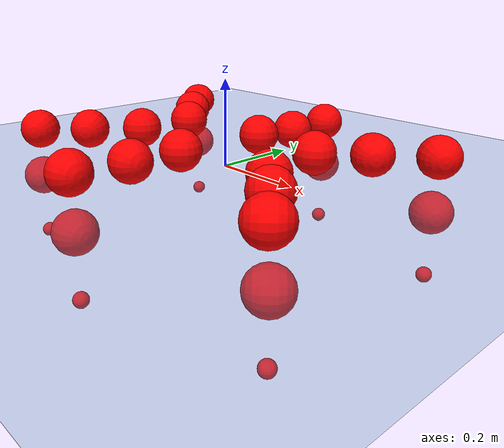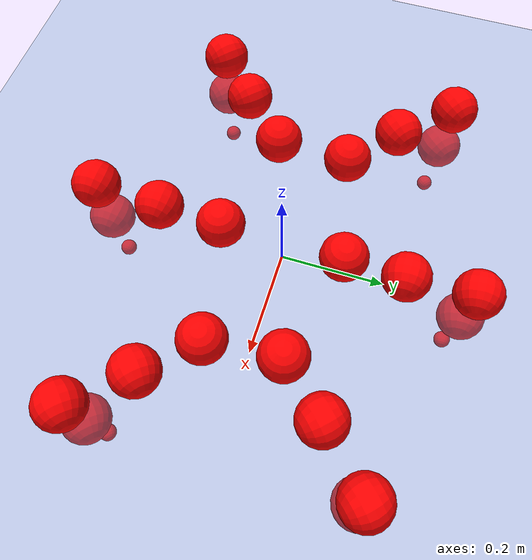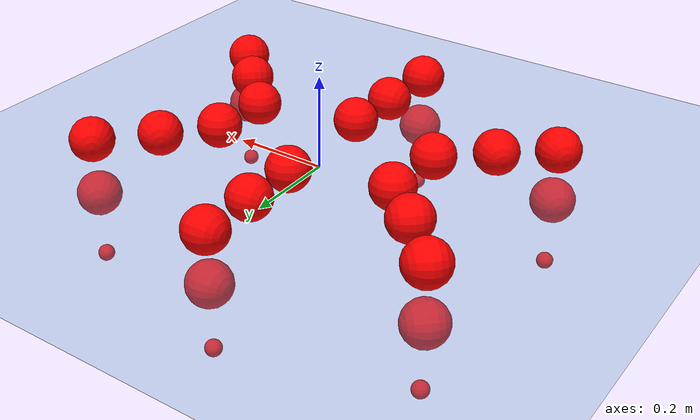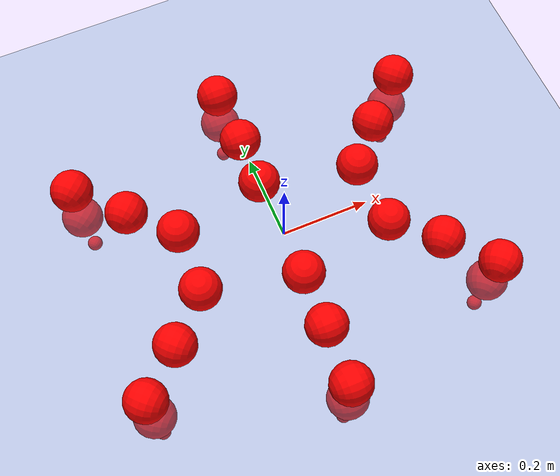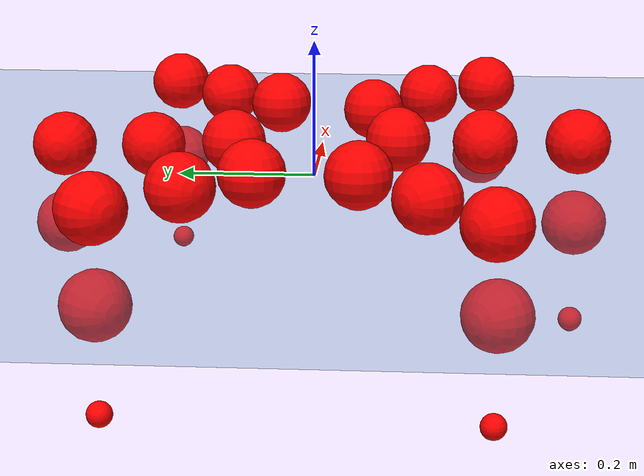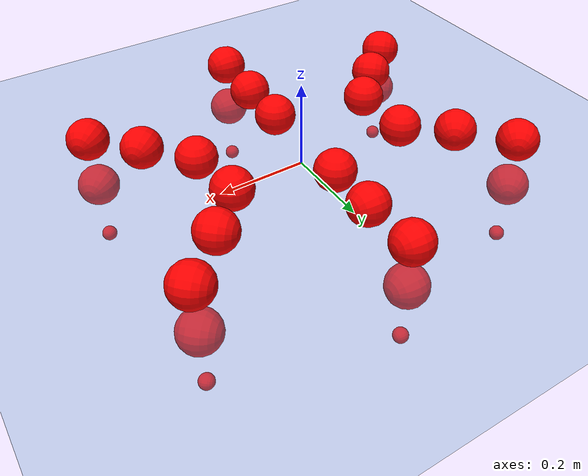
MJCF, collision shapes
<mujoco model="Golem">
  <compiler angle="radian" assetdir="assets" balanceinertia="true" inertiafromgeom="false"/>

  <option timestep="0.005" density="1.2" viscosity="2e-05"/>

  <size nkey="1"/>

  <visual>
    <quality shadowsize="8192"/>
    <map shadowclip="0.5"/>
  </visual>

  <default>
    <default class="/">
      <joint armature="0.01" damping="0.01" frictionloss="0.01"/>
      <geom contype="0" conaffinity="0" group="1" solref="-1000 -80"/>
      <site size="0.01 0.005 0.005" group="5"/>
      <general forcelimited="true" biastype="affine" gainprm="25" biasprm="0 -25 -0.5"/>
      <default class="visual">
        <geom type="mesh" group="2"/>
      </default>
      <default class="collision">
        <geom group="3"/>
      </default>
      <default class="foot">
        <geom size="0.01 0 0" condim="6" group="4" priority="1" solimp="0.015 1 0.01"/>
      </default>
      <default class="reward_collision_sphere">
        <geom group="5" rgba="1 0 0 1"/>
      </default>
    </default>
  </default>

  <asset>
    <texture type="skybox" colorspace="auto" name="//unnamed_texture_0" builtin="gradient" rgb1="0.95 0.95 0.95" rgb2="0.95 0.95 0.95" width="100" height="600"/>
    <texture type="2d" colorspace="auto" name="texplane" builtin="checker" rgb1="0.345 0.575 0.748" rgb2="0.345 0.575 0.748" markrgb="1 1 1" width="512" height="512"/>
    <material name="MatPlane" class="/" texture="texplane" texuniform="true" texrepeat="2 2" specular="0.9"/>
    <mesh name="body" class="/" file="body.stl" scale="0.001 0.001 0.001"/>
    <mesh name="coxa" class="/" file="coxa.stl" scale="0.001 0.001 0.001"/>
    <mesh name="femur" class="/" file="femur.stl" scale="0.001 0.001 0.001"/>
    <mesh name="tibia" class="/" file="tibia.stl" scale="0.001 0.001 0.001"/>
    <mesh name="tarsus" class="/" file="tarsus.stl" scale="0.001 0.001 0.001"/>
  </asset>

  <worldbody>
    <geom name="floor" class="/" size="100 100 0.125" type="plane" group="0" material="MatPlane"/>
    <light name="toplight_shadow" class="/" pos="0 0 5" dir="0.0990148 0.0990148 -0.990148" type="directional" ambient="0.04 0.04 0.04" diffuse="0.55 0.55 0.55" specular="0.12 0.12 0.12"/>
    <light name="toplight_fill" class="/" pos="0 0 5" dir="0.0990148 0.0990148 -0.990148" type="directional" castshadow="false" ambient="0.04 0.04 0.04" diffuse="0.3 0.3 0.3" specular="0.08 0.08 0.08"/>
    <body name="trunk" pos="-0.00581068 -0.00114192 -0.000577944" quat="1 -8.5433e-06 1.65816e-05 7.43385e-05">
      <inertial pos="0.00198474 0.00202305 -0.00491061" quat="0.999986 0.00425101 -0.00205166 -0.0023478" mass="6.23546" diaginertia="0.0563829 0.0295894 0.00577599"/>
      <joint name="//unnamed_joint_0" type="free"/>
      <geom name="//unnamed_geom_1" class="/" pos="0 0 0.0572307" quat="1 0 0 0" type="mesh" rgba="0.9 0.9 0.9 1" mesh="body"/>
      <site name="imu" class="/" pos="0.156241 -0.0226899 0.0977685" size="0.0117153"/>
      <camera name="track" class="/" pos="0 -2.45486 0" quat="0.707107 0.707107 0 0" mode="trackcom"/>
      <camera name="ego_camera" class="/" pos="0.181081 0 0.089423" quat="-0.5 -0.5 0.5 0.5"/>
      <body name="coxa_RR" pos="-0.245653 -0.101711 0.0631873" quat="0.382524 0.000170861 -0.000105029 -0.923946">
        <inertial pos="9.59266e-05 0.00648269 -0.00033105" quat="0.999928 0.0118957 0.00139455 0.000214831" mass="0.357284" diaginertia="0.0554075 0.0295148 0.00609769"/>
        <joint name="coxa_joint_RR" class="/" pos="0 0 0" axis="0.00108037 0.000123187 -0.999999" stiffness="0.0275725" range="-3.12308 3.12876" armature="0.0138432" damping="0.00258876" frictionloss="0.0115775"/>
        <geom name="//unnamed_geom_2" class="/" type="mesh" rgba="0.2 0.2 0.2 1" mesh="coxa"/>
        <geom name="//unnamed_geom_3" class="reward_collision_sphere" size="0.0468613" pos="-0.041788 0 0"/>
        <body name="femur_RR" pos="0.0878098 0.000646765 -0.00406393" quat="0.499985 -0.499643 0.500227 0.500144">
          <inertial pos="1.31629e-05 -0.000934956 -0.000697551" quat="0.999969 -0.00157118 -0.0030331 0.00711223" mass="0.320881" diaginertia="0.052508 0.0283934 0.00518506"/>
          <joint name="femur_joint_RR" class="/" pos="0 0 0" axis="0.00968642 -0.00318944 -0.999948" stiffness="0.0247294" range="-3.05098 3.1833" armature="0.0105661" damping="0" frictionloss="0.00944909"/>
          <geom name="//unnamed_geom_4" class="/" type="mesh" rgba="0.9 0.9 0.9 1" mesh="femur"/>
          <geom name="//unnamed_geom_5" class="reward_collision_sphere" size="0.0468613"/>
          <body name="tibia_RR" pos="0.00356523 -0.127146 -0.00658824" quat="0.00256196 0.999995 0.00158306 -0.000933779">
            <inertial pos="0.00446767 -0.00223089 -0.00112554" quat="0.999989 0.00110465 -0.00227819 -0.00387495" mass="0.313386" diaginertia="0.0517916 0.0276377 0.00591439"/>
            <joint name="tibia_joint_RR" class="/" pos="0 0 0" axis="-0.0165541 0.0138986 0.999766" range="-3.13289 3.11114" armature="0.0103601" damping="0.00786752" frictionloss="0.0118227"/>
            <geom name="//unnamed_geom_6" class="/" type="mesh" rgba="0.2 0.2 0.2 1" mesh="tibia"/>
            <geom name="//unnamed_geom_7" class="reward_collision_sphere" size="0.0468613"/>
            <body name="tarsus_RR" pos="0.119321 0.00219376 -0.00414605" quat="1 -3.42397e-05 -6.7475e-06 5.22024e-05">
              <inertial pos="0.0795199 -5.76541e-05 0.000181783" quat="0.506537 0.50117 0.492708 0.499487" mass="0.316503" diaginertia="0.0539607 0.0280717 0.00560047"/>
              <joint name="tarsus_joint_RR" class="/" pos="0 0 0" axis="0.0023196 -0.00813868 0.999964" range="-3.05223 3.10507" armature="0.0106238" damping="0.046239" frictionloss="0.0117325"/>
              <geom name="//unnamed_geom_8" class="/" type="mesh" rgba="0.9 0.9 0.9 1" mesh="tarsus"/>
              <geom name="foot_1" class="foot" size="0.0116647" pos="0.156009 0 0" quat="0 -0.707107 0 0.707107"/>
              <geom name="//unnamed_geom_10" class="reward_collision_sphere" size="0.0468613"/>
              <geom name="//unnamed_geom_11" class="reward_collision_sphere" size="0.017573" pos="0.14974 0 0"/>
              <site name="foot_1" class="foot" pos="0.156009 0 0" quat="0 -0.707107 0 0.707107" size="0.0117153"/>
            </body>
          </body>
        </body>
      </body>
      <body name="coxa_RM" pos="-0.00110895 -0.162959 0.0595455" quat="0.70709 0.000377129 0.0006372 -0.707124">
        <inertial pos="-0.00259161 -0.0001488 -0.000100217" quat="0.999999 -0.000514215 0.000112831 0.000993131" mass="0.322818" diaginertia="0.0532249 0.0302812 0.00562669"/>
        <joint name="coxa_joint_RM" class="/" pos="0 0 0" axis="0.00628195 0.00726946 -0.999954" range="-3.15927 3.18046" armature="0.0118716" damping="0.0240012" frictionloss="0.0161114"/>
        <geom name="//unnamed_geom_12" class="/" type="mesh" rgba="0.2 0.2 0.2 1" mesh="coxa"/>
        <geom name="//unnamed_geom_13" class="reward_collision_sphere" size="0.0468613" pos="-0.041788 0 0"/>
        <body name="femur_RM" pos="0.0842164 -0.0039771 -0.000321623" quat="0.501125 -0.5015 0.499074 0.498294">
          <inertial pos="0.00206754 -0.000720699 -0.000320009" quat="0.999982 0.00515794 0.00242011 0.00162347" mass="0.290404" diaginertia="0.0482496 0.0267464 0.0052421"/>
          <joint name="femur_joint_RM" class="/" pos="0 0 0" axis="0.00260508 0.00538445 -0.999982" range="-3.09832 3.1552" armature="0.0116549" damping="0" frictionloss="0.0119382"/>
          <geom name="//unnamed_geom_14" class="/" type="mesh" rgba="0.9 0.9 0.9 1" mesh="femur"/>
          <geom name="//unnamed_geom_15" class="reward_collision_sphere" size="0.0468613"/>
          <body name="tibia_RM" pos="-0.00313882 -0.133246 -0.0063234" quat="0.000210973 1 -0.000400384 0.000385073">
            <inertial pos="-0.00202761 0.00628715 0.0011259" quat="0.999722 0.0101603 -0.00627199 0.0203198" mass="0.334914" diaginertia="0.0514945 0.0252144 0.005476"/>
            <joint name="tibia_joint_RM" class="/" pos="0 0 0" axis="8.20548e-06 0.00468762 0.999989" range="-3.04481 2.99031" armature="0.0119707" damping="0.0182001" frictionloss="0.0129544"/>
            <geom name="//unnamed_geom_16" class="/" type="mesh" rgba="0.2 0.2 0.2 1" mesh="tibia"/>
            <geom name="//unnamed_geom_17" class="reward_collision_sphere" size="0.0468613"/>
            <body name="tarsus_RM" pos="0.122327 -0.00164641 -0.00169964" quat="1 4.42607e-05 0.00029683 -0.000155849">
              <inertial pos="0.0863029 0.00198562 -0.00286007" quat="0.496555 0.523782 0.497731 0.480987" mass="0.298308" diaginertia="0.0555861 0.0283779 0.0059727"/>
              <joint name="tarsus_joint_RM" class="/" pos="0 0 0" axis="-0.00354603 -0.00449801 0.999984" stiffness="0.00768361" range="-3.17113 3.10188" armature="0.012075" damping="0" frictionloss="0.0117561"/>
              <geom name="//unnamed_geom_18" class="/" type="mesh" rgba="0.9 0.9 0.9 1" mesh="tarsus"/>
              <geom name="foot_2" class="foot" size="0.0125303" pos="0.156009 0 0" quat="0 -0.707107 0 0.707107"/>
              <geom name="//unnamed_geom_20" class="reward_collision_sphere" size="0.0468613"/>
              <geom name="//unnamed_geom_21" class="reward_collision_sphere" size="0.017573" pos="0.14974 0 0"/>
              <site name="foot_2" class="foot" pos="0.156009 0 0" quat="0 -0.707107 0 0.707107" size="0.0117153"/>
            </body>
          </body>
        </body>
      </body>
      <body name="coxa_RF" pos="0.249868 -0.108045 0.0528153" quat="0.923517 0.000334517 -0.00122361 -0.383554">
        <inertial pos="-0.00139988 -0.000657972 0.001288" quat="0.999998 -0.0015443 0.000435617 0.00103671" mass="0.329944" diaginertia="0.0524125 0.0290532 0.00583906"/>
        <joint name="coxa_joint_RF" class="/" pos="0 0 0" axis="-0.000340977 -0.000168151 -1" stiffness="0.00868692" range="-3.11464 3.17868" armature="0.00938311" damping="0.0336957" frictionloss="0.0127863"/>
        <geom name="//unnamed_geom_22" class="/" type="mesh" rgba="0.2 0.2 0.2 1" mesh="coxa"/>
        <geom name="//unnamed_geom_23" class="reward_collision_sphere" size="0.0468613" pos="-0.041788 0 0"/>
        <body name="femur_RF" pos="0.0815528 0.000794517 0.00656878" quat="0.499933 -0.500477 0.499627 0.499962">
          <inertial pos="0.000673531 0.0016657 0.00158718" quat="0.999997 0.000923986 -0.000901652 -0.00208379" mass="0.319715" diaginertia="0.052441 0.0283123 0.00534427"/>
          <joint name="femur_joint_RF" class="/" pos="0 0 0" axis="-0.000749614 0.000695802 -0.999999" range="-3.017 3.16918" armature="0.0143638" damping="0.00785232" frictionloss="0.00985584"/>
          <geom name="//unnamed_geom_24" class="/" type="mesh" rgba="0.9 0.9 0.9 1" mesh="femur"/>
          <geom name="//unnamed_geom_25" class="reward_collision_sphere" size="0.0468613"/>
          <body name="tibia_RF" pos="0.003205 -0.129538 -0.00698997" quat="-0.000426704 1 -1.80147e-05 0.000473326">
            <inertial pos="0.00659689 -0.0013588 -0.00237857" quat="0.999999 -0.0011351 -0.00017647 -0.000383368" mass="0.30896" diaginertia="0.0546557 0.028091 0.0060026"/>
            <joint name="tibia_joint_RF" class="/" pos="0 0 0" axis="0.0146631 0.0274373 0.999516" stiffness="0.0003714" range="-3.17857 3.26383" armature="0.0111516" damping="0.0204679" frictionloss="0.0114923"/>
            <geom name="//unnamed_geom_26" class="/" type="mesh" rgba="0.2 0.2 0.2 1" mesh="tibia"/>
            <geom name="//unnamed_geom_27" class="reward_collision_sphere" size="0.0468613"/>
            <body name="tarsus_RF" pos="0.123146 -0.00549442 -0.00394078" quat="0.999996 0.00041816 0.00198157 -0.00188668">
              <inertial pos="0.0839509 0.00230454 0.000385759" quat="0.505097 0.497207 0.497112 0.500541" mass="0.310575" diaginertia="0.0535254 0.0268566 0.00560002"/>
              <joint name="tarsus_joint_RF" class="/" pos="0 0 0" axis="0.00446689 -0.00496125 0.999978" range="-3.15664 3.09956" armature="0.0110089" damping="0.0013609" frictionloss="0.0118808"/>
              <geom name="//unnamed_geom_28" class="/" type="mesh" rgba="0.9 0.9 0.9 1" mesh="tarsus"/>
              <geom name="foot_3" class="foot" size="0.0104157" pos="0.156009 0 0" quat="0 -0.707107 0 0.707107"/>
              <geom name="//unnamed_geom_30" class="reward_collision_sphere" size="0.0468613"/>
              <geom name="//unnamed_geom_31" class="reward_collision_sphere" size="0.017573" pos="0.14974 0 0"/>
              <site name="foot_3" class="foot" pos="0.156009 0 0" quat="0 -0.707107 0 0.707107" size="0.0117153"/>
            </body>
          </body>
        </body>
      </body>
      <body name="coxa_LR" pos="-0.24167 0.101117 0.0620897" quat="0.382474 -0.000673661 0.000464923 0.923966">
        <inertial pos="0.00534128 -0.000339834 0.00713841" quat="0.999509 0.0190075 0.00346054 0.024672" mass="0.319412" diaginertia="0.051395 0.0244943 0.00563589"/>
        <joint name="coxa_joint_LR" class="/" pos="0 0 0" axis="0.0156995 0.0226618 -0.99962" range="-3.17448 3.14912" armature="0.0123319" damping="0" frictionloss="0.0137491"/>
        <geom name="//unnamed_geom_32" class="/" type="mesh" rgba="0.2 0.2 0.2 1" mesh="coxa"/>
        <geom name="//unnamed_geom_33" class="reward_collision_sphere" size="0.0468613" pos="-0.041788 0 0"/>
        <body name="femur_LR" pos="0.0798247 0.00300639 0.00451835" quat="0.499982 -0.499698 0.500204 0.500117">
          <inertial pos="-0.000905555 0.00198089 -0.00197419" quat="0.999993 -0.000933454 -0.000312875 0.00357767" mass="0.32226" diaginertia="0.0528435 0.0268517 0.00562872"/>
          <joint name="femur_joint_LR" class="/" pos="0 0 0" axis="0.00454822 -0.00405296 0.999981" range="-3.10595 3.10261" armature="0.0129823" damping="0.0154127" frictionloss="0.0156554"/>
          <geom name="//unnamed_geom_34" class="/" type="mesh" rgba="0.9 0.9 0.9 1" mesh="femur"/>
          <geom name="//unnamed_geom_35" class="reward_collision_sphere" size="0.0468613"/>
          <body name="tibia_LR" pos="0.00260867 -0.135087 -0.00445498" quat="0.000818873 0.999997 0.00111108 -0.00214023">
            <inertial pos="0.00131263 0.00171785 0.000689697" quat="0.999931 -0.00836555 -0.00608004 0.00563293" mass="0.326394" diaginertia="0.0533378 0.0271883 0.00554099"/>
            <joint name="tibia_joint_LR" class="/" pos="0 0 0" axis="-0.00122341 0.00460074 -0.999989" stiffness="0.00966858" range="-3.13138 3.20704" armature="0.0106554" damping="0" frictionloss="0.0128452"/>
            <geom name="//unnamed_geom_36" class="/" type="mesh" rgba="0.2 0.2 0.2 1" mesh="tibia"/>
            <geom name="//unnamed_geom_37" class="reward_collision_sphere" size="0.0468613"/>
            <body name="tarsus_LR" pos="0.126872 0.00088903 -0.00324828" quat="0.999996 3.49607e-05 -0.00248897 0.00126561">
              <inertial pos="0.0768341 9.51528e-05 0.0064714" quat="0.501802 0.499012 0.499885 0.499296" mass="0.334153" diaginertia="0.0530572 0.0292918 0.00568183"/>
              <joint name="tarsus_joint_LR" class="/" pos="0 0 0" axis="-0.0146276 -0.0187084 -0.999718" range="-3.05999 3.21882" armature="0.0129937" damping="0.00839409" frictionloss="0.0124151"/>
              <geom name="//unnamed_geom_38" class="/" type="mesh" rgba="0.9 0.9 0.9 1" mesh="tarsus"/>
              <geom name="foot_4" class="foot" size="0.0112691" pos="0.156009 0 0" quat="0.707107 0 -0.707107 0"/>
              <geom name="//unnamed_geom_40" class="reward_collision_sphere" size="0.0468613"/>
              <geom name="//unnamed_geom_41" class="reward_collision_sphere" size="0.017573" pos="0.14974 0 0"/>
              <site name="foot_4" class="foot" pos="0.156009 0 0" quat="0.707107 0 -0.707107 0" size="0.0117153"/>
            </body>
          </body>
        </body>
      </body>
      <body name="coxa_LM" pos="-0.00331652 0.160435 0.0532531" quat="0.707047 -4.07232e-05 0.000130248 0.707167">
        <inertial pos="0.00220254 -0.00124665 0.00309627" quat="0.999964 -0.00165048 0.00234467 -0.00799953" mass="0.317996" diaginertia="0.0521067 0.0282577 0.00567499"/>
        <joint name="coxa_joint_LM" class="/" pos="0 0 0" axis="-0.0037566 0.0112769 -0.999929" stiffness="0.0081818" range="-3.21725 3.17578" armature="0.011886" damping="0" frictionloss="0.00972222"/>
        <geom name="//unnamed_geom_42" class="/" type="mesh" rgba="0.2 0.2 0.2 1" mesh="coxa"/>
        <geom name="//unnamed_geom_43" class="reward_collision_sphere" size="0.0468613" pos="-0.041788 0 0"/>
        <body name="femur_LM" pos="0.0773095 -0.00255089 -0.00617252" quat="0.49914 -0.499648 0.500631 0.500579">
          <inertial pos="-9.21935e-07 0.00395556 -0.00692557" quat="0.999589 -0.0168062 -0.0168153 -0.0160318" mass="0.329972" diaginertia="0.0533576 0.0311434 0.00592094"/>
          <joint name="femur_joint_LM" class="/" pos="0 0 0" axis="0.00404819 0.00660615 0.99997" stiffness="0.00137785" range="-3.15226 3.20973" armature="0.0111911" damping="0.0211477" frictionloss="0.0113362"/>
          <geom name="//unnamed_geom_44" class="/" type="mesh" rgba="0.9 0.9 0.9 1" mesh="femur"/>
          <geom name="//unnamed_geom_45" class="reward_collision_sphere" size="0.0468613"/>
          <body name="tibia_LM" pos="0.000118609 -0.131266 0.00439698" quat="-0.00195106 0.999994 0.000518993 -0.00281653">
            <inertial pos="0.00160535 0.00708362 0.00141777" quat="0.999957 0.00275968 0.00623633 -0.0062149" mass="0.316869" diaginertia="0.0532405 0.0261596 0.00580713"/>
            <joint name="tibia_joint_LM" class="/" pos="0 0 0" axis="-0.00446002 -0.00546774 -0.999975" stiffness="0.000430283" range="-3.14312 3.16837" armature="0.00907909" damping="0.0405306" frictionloss="0.0120334"/>
            <geom name="//unnamed_geom_46" class="/" type="mesh" rgba="0.2 0.2 0.2 1" mesh="tibia"/>
            <geom name="//unnamed_geom_47" class="reward_collision_sphere" size="0.0468613"/>
            <body name="tarsus_LM" pos="0.118255 -0.000202999 -0.00154058" quat="0.999993 0.000450712 0.00217576 0.00299854">
              <inertial pos="0.0857458 -0.000708829 0.000600895" quat="0.500146 0.500695 0.499019 0.500138" mass="0.339979" diaginertia="0.0563428 0.0294114 0.00599209"/>
              <joint name="tarsus_joint_LM" class="/" pos="0 0 0" axis="-0.00449843 -0.00206976 -0.999988" stiffness="0.0235566" range="-3.27645 3.17695" armature="0.00884174" damping="0.0437307" frictionloss="0.0121481"/>
              <geom name="//unnamed_geom_48" class="/" type="mesh" rgba="0.9 0.9 0.9 1" mesh="tarsus"/>
              <geom name="foot_5" class="foot" size="0.0122351" pos="0.156009 0 0" quat="0.707107 0 -0.707107 0"/>
              <geom name="//unnamed_geom_50" class="reward_collision_sphere" size="0.0468613"/>
              <geom name="//unnamed_geom_51" class="reward_collision_sphere" size="0.017573" pos="0.14974 0 0"/>
              <site name="foot_5" class="foot" pos="0.156009 0 0" quat="0.707107 0 -0.707107 0" size="0.0117153"/>
            </body>
          </body>
        </body>
      </body>
      <body name="coxa_LF" pos="0.241021 0.0963804 0.0631629" quat="0.924239 0.00034314 0.000257707 0.381814">
        <inertial pos="-0.000908454 0.00179462 -0.000743427" quat="0.999939 0.0071688 0.00805669 -0.00237632" mass="0.350235" diaginertia="0.0576421 0.0299536 0.00597327"/>
        <joint name="coxa_joint_LF" class="/" pos="0 0 0" axis="-0.00339668 0.0012196 -0.999993" stiffness="0.0299943" range="-3.14655 3.0034" armature="0.00916325" damping="0.0449574" frictionloss="0.0128793"/>
        <geom name="//unnamed_geom_52" class="/" type="mesh" rgba="0.2 0.2 0.2 1" mesh="coxa"/>
        <geom name="//unnamed_geom_53" class="reward_collision_sphere" size="0.0468613" pos="-0.041788 0 0"/>
        <body name="femur_LF" pos="0.0804117 0.00573037 -0.00400681" quat="0.500215 -0.502066 0.499118 0.498594">
          <inertial pos="-0.00654262 -0.00084886 0.0016851" quat="0.999956 -0.0035633 0.00538264 -0.00687079" mass="0.305457" diaginertia="0.050935 0.0271688 0.00570814"/>
          <joint name="femur_joint_LF" class="/" pos="0 0 0" axis="-0.00106468 0.00383405 0.999992" range="-3.16943 3.18518" armature="0.00919494" damping="0" frictionloss="0.0105523"/>
          <geom name="//unnamed_geom_54" class="/" type="mesh" rgba="0.9 0.9 0.9 1" mesh="femur"/>
          <geom name="//unnamed_geom_55" class="reward_collision_sphere" size="0.0468613"/>
          <body name="tibia_LF" pos="0.00327919 -0.138009 -0.00160062" quat="-0.00101964 0.999999 -0.000142841 -6.5181e-05">
            <inertial pos="-0.000490716 -0.00274673 0.000420569" quat="0.999961 0.0050938 0.00497943 -0.00519619" mass="0.322989" diaginertia="0.0516049 0.0287109 0.00569558"/>
            <joint name="tibia_joint_LF" class="/" pos="0 0 0" axis="0.00448273 0.00640685 -0.999969" stiffness="0.00875092" range="-3.14166 3.17749" armature="0.0126279" damping="0.0188805" frictionloss="0.0115491"/>
            <geom name="//unnamed_geom_56" class="/" type="mesh" rgba="0.2 0.2 0.2 1" mesh="tibia"/>
            <geom name="//unnamed_geom_57" class="reward_collision_sphere" size="0.0468613"/>
            <body name="tarsus_LF" pos="0.12514 -0.00302147 -0.00351407" quat="0.999996 -3.22467e-05 0.00288569 0.000255954">
              <inertial pos="0.0852783 0.0025471 0.000105282" quat="0.504127 0.50051 0.505812 0.489387" mass="0.326321" diaginertia="0.0548945 0.0272542 0.00582965"/>
              <joint name="tarsus_joint_LF" class="/" pos="0 0 0" axis="-0.000524773 0.000111503 -1" stiffness="0.00116499" range="-3.07733 3.13718" armature="0.0118266" damping="0.0419563" frictionloss="0.0105958"/>
              <geom name="//unnamed_geom_58" class="/" type="mesh" rgba="0.9 0.9 0.9 1" mesh="tarsus"/>
              <geom name="foot_6" class="foot" size="0.0120729" pos="0.156009 0 0" quat="0.707107 0 -0.707107 0"/>
              <geom name="//unnamed_geom_60" class="reward_collision_sphere" size="0.0468613"/>
              <geom name="//unnamed_geom_61" class="reward_collision_sphere" size="0.017573" pos="0.14974 0 0"/>
              <site name="foot_6" class="foot" pos="0.156009 0 0" quat="0.707107 0 -0.707107 0" size="0.0117153"/>
            </body>
          </body>
        </body>
      </body>
    </body>
  </worldbody>

  <contact>
    <pair class="/" geom1="floor" geom2="foot_1" name="//unnamed_contact_0"/>
    <pair class="/" geom1="floor" geom2="foot_2" name="//unnamed_contact_1"/>
    <pair class="/" geom1="floor" geom2="foot_3" name="//unnamed_contact_2"/>
    <pair class="/" geom1="floor" geom2="foot_4" name="//unnamed_contact_3"/>
    <pair class="/" geom1="floor" geom2="foot_5" name="//unnamed_contact_4"/>
    <pair class="/" geom1="floor" geom2="foot_6" name="//unnamed_contact_5"/>
  </contact>

  <actuator>
    <general name="coxa_joint_RR" class="/" joint="coxa_joint_RR" forcerange="-9.27257 9.27257" gainprm="28.2159" biasprm="0 -28.2159 -0.54533"/>
    <general name="femur_joint_RR" class="/" joint="femur_joint_RR" forcerange="-8.726 8.726" gainprm="28.2159" biasprm="0 -28.2159 -0.54533"/>
    <general name="tibia_joint_RR" class="/" joint="tibia_joint_RR" forcerange="-8.43719 8.43719" gainprm="28.2159" biasprm="0 -28.2159 -0.54533"/>
    <general name="tarsus_joint_RR" class="/" joint="tarsus_joint_RR" forcerange="-7.59814 7.59814" gainprm="28.2159" biasprm="0 -28.2159 -0.54533"/>
    <general name="coxa_joint_RM" class="/" joint="coxa_joint_RM" forcerange="-10.5594 10.5594" gainprm="28.2159" biasprm="0 -28.2159 -0.54533"/>
    <general name="femur_joint_RM" class="/" joint="femur_joint_RM" forcerange="-7.82836 7.82836" gainprm="28.2159" biasprm="0 -28.2159 -0.54533"/>
    <general name="tibia_joint_RM" class="/" joint="tibia_joint_RM" forcerange="-9.00437 9.00437" gainprm="28.2159" biasprm="0 -28.2159 -0.54533"/>
    <general name="tarsus_joint_RM" class="/" joint="tarsus_joint_RM" forcerange="-9.24055 9.24055" gainprm="28.2159" biasprm="0 -28.2159 -0.54533"/>
    <general name="coxa_joint_RF" class="/" joint="coxa_joint_RF" forcerange="-10.3054 10.3054" gainprm="28.2159" biasprm="0 -28.2159 -0.54533"/>
    <general name="femur_joint_RF" class="/" joint="femur_joint_RF" forcerange="-8.78223 8.78223" gainprm="28.2159" biasprm="0 -28.2159 -0.54533"/>
    <general name="tibia_joint_RF" class="/" joint="tibia_joint_RF" forcerange="-10.7257 10.7257" gainprm="28.2159" biasprm="0 -28.2159 -0.54533"/>
    <general name="tarsus_joint_RF" class="/" joint="tarsus_joint_RF" forcerange="-8.42491 8.42491" gainprm="28.2159" biasprm="0 -28.2159 -0.54533"/>
    <general name="coxa_joint_LR" class="/" joint="coxa_joint_LR" forcerange="-8.66797 8.66797" gainprm="28.2159" biasprm="0 -28.2159 -0.54533"/>
    <general name="femur_joint_LR" class="/" joint="femur_joint_LR" forcerange="-8.99989 8.99989" gainprm="28.2159" biasprm="0 -28.2159 -0.54533"/>
    <general name="tibia_joint_LR" class="/" joint="tibia_joint_LR" forcerange="-8.10494 8.10494" gainprm="28.2159" biasprm="0 -28.2159 -0.54533"/>
    <general name="tarsus_joint_LR" class="/" joint="tarsus_joint_LR" forcerange="-8.92066 8.92066" gainprm="28.2159" biasprm="0 -28.2159 -0.54533"/>
    <general name="coxa_joint_LM" class="/" joint="coxa_joint_LM" forcerange="-7.34035 7.34035" gainprm="28.2159" biasprm="0 -28.2159 -0.54533"/>
    <general name="femur_joint_LM" class="/" joint="femur_joint_LM" forcerange="-8.67307 8.67307" gainprm="28.2159" biasprm="0 -28.2159 -0.54533"/>
    <general name="tibia_joint_LM" class="/" joint="tibia_joint_LM" forcerange="-7.89305 7.89305" gainprm="28.2159" biasprm="0 -28.2159 -0.54533"/>
    <general name="tarsus_joint_LM" class="/" joint="tarsus_joint_LM" forcerange="-9.02531 9.02531" gainprm="28.2159" biasprm="0 -28.2159 -0.54533"/>
    <general name="coxa_joint_LF" class="/" joint="coxa_joint_LF" forcerange="-10.8236 10.8236" gainprm="28.2159" biasprm="0 -28.2159 -0.54533"/>
    <general name="femur_joint_LF" class="/" joint="femur_joint_LF" forcerange="-8.73962 8.73962" gainprm="28.2159" biasprm="0 -28.2159 -0.54533"/>
    <general name="tibia_joint_LF" class="/" joint="tibia_joint_LF" forcerange="-9.24574 9.24574" gainprm="28.2159" biasprm="0 -28.2159 -0.54533"/>
    <general name="tarsus_joint_LF" class="/" joint="tarsus_joint_LF" forcerange="-8.79837 8.79837" gainprm="28.2159" biasprm="0 -28.2159 -0.54533"/>
  </actuator>

  <sensor>
    <gyro site="imu" name="imu_angular_velocity"/>
    <velocimeter site="imu" name="imu_linear_velocity"/>
    <framelinvel objtype="site" objname="foot_1" name="foot_1_global_linear_velocity"/>
    <framelinvel objtype="site" objname="foot_2" name="foot_2_global_linear_velocity"/>
    <framelinvel objtype="site" objname="foot_3" name="foot_3_global_linear_velocity"/>
    <framelinvel objtype="site" objname="foot_4" name="foot_4_global_linear_velocity"/>
    <framelinvel objtype="site" objname="foot_5" name="foot_5_global_linear_velocity"/>
    <framelinvel objtype="site" objname="foot_6" name="foot_6_global_linear_velocity"/>
  </sensor>

  <keyframe>
    <key name="home" qpos="0 0 0.1457 1 0 0 0 0 0 0 0 0 0 0 0 0 0 0 0 0 0 0 0 0 0 0 0 0 0 0 0"/>
  </keyframe>
</mujoco>
